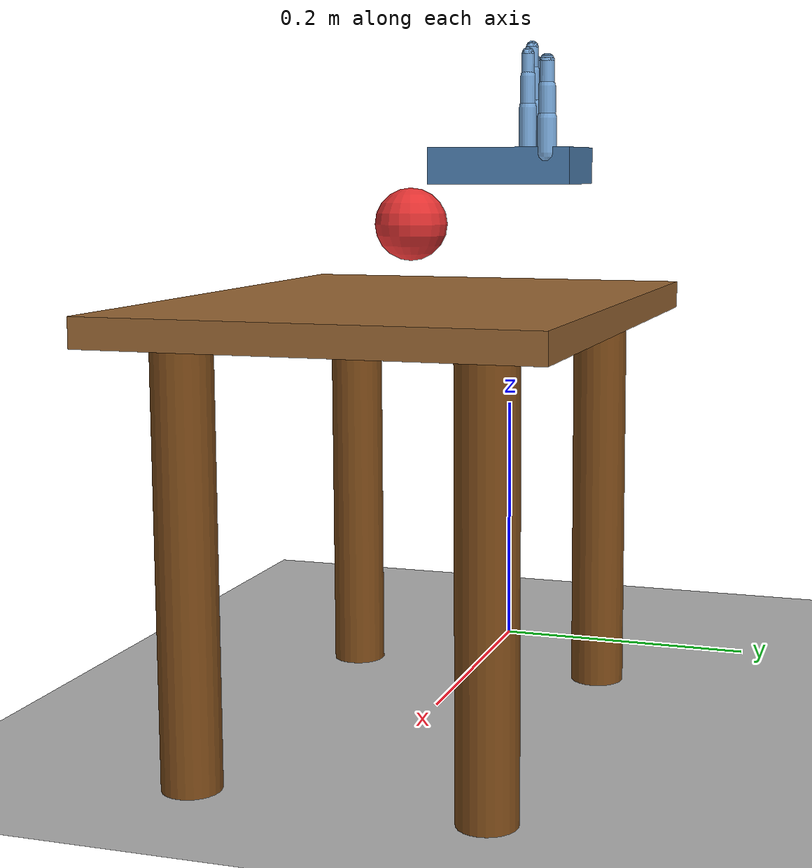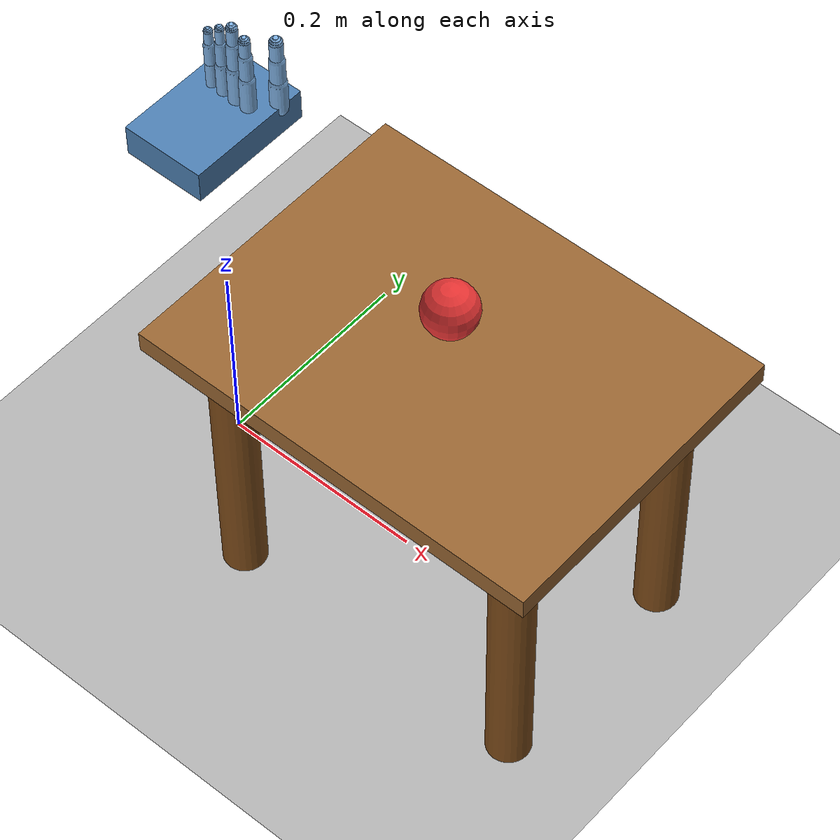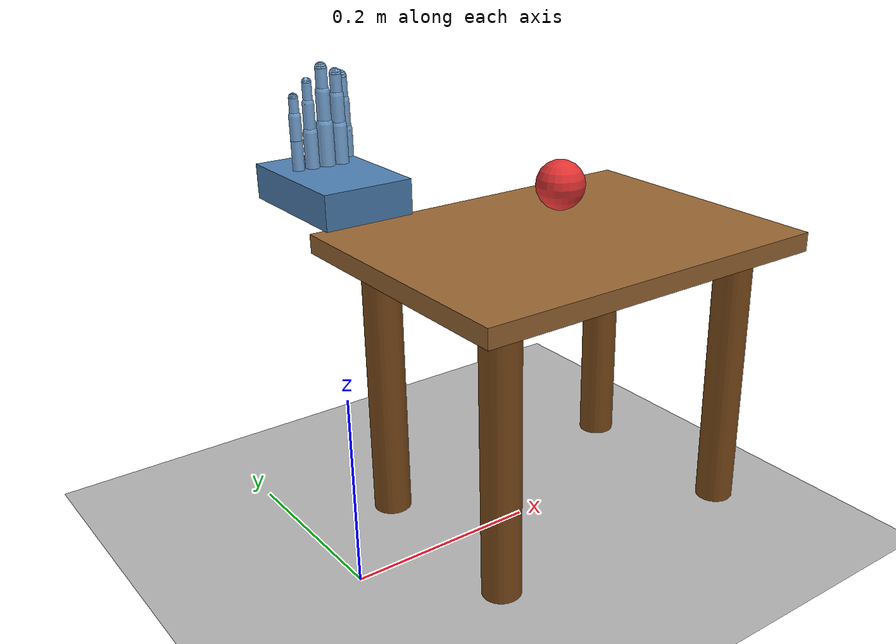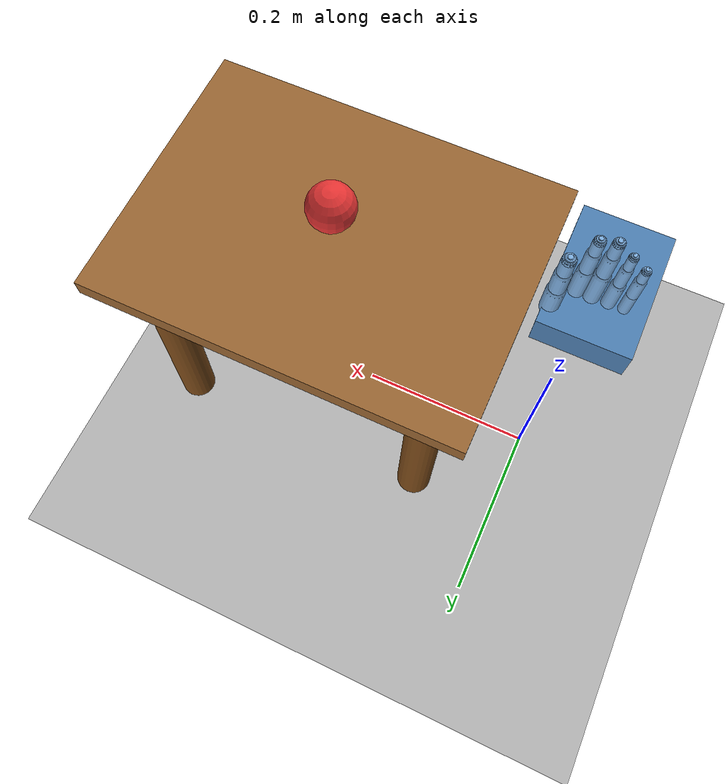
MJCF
<!--
  @file    leap_hand_description.xml
  @brief   简化的灵巧手MuJoCo XML模型
  @details 5根手指，每根3个关节（MCP, PIP, DIP），含桌面场景和可抓取球体。
           这是简化模型，用于验证运动学，不是完整的LEAP Hand。
-->

<mujoco model="leap_hand_simple">
  <compiler angle="degree" autolimits="true"/>

  <option timestep="0.002" gravity="0 0 -9.81"/>

  <default>
    <joint armature="0.01" damping="0.1"/>
    <geom condim="4" friction="1.0 0.005 0.0001"/>
    <position kp="50" kv="5"/>
  </default>

  <asset>
    <texture name="grid" type="2d" builtin="checker" rgb1="0.8 0.8 0.8" rgb2="0.6 0.6 0.6" width="512" height="512"/>
    <material name="grid_mat" texture="grid" texrepeat="4 4" reflectance="0.1"/>
    <material name="hand_mat" rgba="0.4 0.6 0.8 1.0"/>
    <material name="palm_mat" rgba="0.3 0.5 0.7 1.0"/>
    <material name="finger_mat" rgba="0.5 0.7 0.9 1.0"/>
    <material name="ball_mat" rgba="0.9 0.2 0.2 1.0"/>
    <material name="cylinder_mat" rgba="0.2 0.8 0.2 1.0"/>
    <material name="box_mat" rgba="0.2 0.2 0.9 1.0"/>
  </asset>

  <worldbody>
    <!-- 地面 -->
    <geom name="floor" type="plane" size="0.5 0.5 0.01" material="grid_mat"/>
    <light directional="true" diffuse="0.8 0.8 0.8" specular="0.3 0.3 0.3" pos="0 0 4" dir="0 0 -1"/>

    <!-- 桌面 -->
    <body name="table" pos="0.25 0 0.3">
      <geom name="table_top" type="box" size="0.2 0.15 0.01" rgba="0.6 0.4 0.2 1.0" mass="5"/>
      <geom name="table_leg1" type="cylinder" size="0.02 0.15" pos=" 0.15  0.1 -0.16" rgba="0.5 0.3 0.1 1.0"/>
      <geom name="table_leg2" type="cylinder" size="0.02 0.15" pos="-0.15  0.1 -0.16" rgba="0.5 0.3 0.1 1.0"/>
      <geom name="table_leg3" type="cylinder" size="0.02 0.15" pos=" 0.15 -0.1 -0.16" rgba="0.5 0.3 0.1 1.0"/>
      <geom name="table_leg4" type="cylinder" size="0.02 0.15" pos="-0.15 -0.1 -0.16" rgba="0.5 0.3 0.1 1.0"/>
    </body>

    <!-- 可抓取球体 -->
    <body name="ball" pos="0.25 0 0.36">
      <freejoint name="ball_joint"/>
      <geom name="ball_geom" type="sphere" size="0.025" material="ball_mat" mass="0.05"/>
    </body>

    <!-- 灵巧手基座（手掌） -->
    <body name="palm" pos="0 0 0.4">
      <geom name="palm_geom" type="box" size="0.04 0.06 0.015" material="palm_mat" mass="0.2"/>

      <!-- ============ 拇指 ============ -->
      <body name="thumb_base" pos="0.035 0.04 0.01">
        <joint name="thumb_mcp_x" type="hinge" axis="1 0 0" range="-20 60"/>
        <geom name="thumb_mcp_geom" type="capsule" fromto="0 0 0 0 0 0.028" size="0.008" material="finger_mat"/>

        <body name="thumb_mcp" pos="0 0 0.028">
          <joint name="thumb_mcp_y" type="hinge" axis="0 1 0" range="-10 70"/>
          <geom name="thumb_pip_geom" type="capsule" fromto="0 0 0 0 0 0.025" size="0.007" material="finger_mat"/>

          <body name="thumb_pip" pos="0 0 0.025">
            <joint name="thumb_pip" type="hinge" axis="0 1 0" range="0 80"/>
            <geom name="thumb_dip_geom" type="capsule" fromto="0 0 0 0 0 0.02" size="0.006" material="finger_mat"/>

            <body name="thumb_tip" pos="0 0 0.02">
              <geom name="thumb_tip_geom" type="sphere" size="0.006" material="finger_mat" contype="1" conaffinity="1"/>
              <site name="thumb_tip_site" pos="0 0 0" size="0.003"/>
            </body>
          </body>
        </body>
      </body>

      <!-- ============ 食指 ============ -->
      <body name="index_base" pos="0.02 0.02 0.015">
        <joint name="index_mcp" type="hinge" axis="1 0 0" range="-10 90"/>
        <geom name="index_mcp_geom" type="capsule" fromto="0 0 0 0 0 0.032" size="0.007" material="finger_mat"/>

        <body name="index_mcp" pos="0 0 0.032">
          <joint name="index_pip" type="hinge" axis="1 0 0" range="0 100"/>
          <geom name="index_pip_geom" type="capsule" fromto="0 0 0 0 0 0.025" size="0.006" material="finger_mat"/>

          <body name="index_pip" pos="0 0 0.025">
            <joint name="index_dip" type="hinge" axis="1 0 0" range="0 80"/>
            <geom name="index_dip_geom" type="capsule" fromto="0 0 0 0 0 0.018" size="0.005" material="finger_mat"/>

            <body name="index_tip" pos="0 0 0.018">
              <geom name="index_tip_geom" type="sphere" size="0.005" material="finger_mat" contype="1" conaffinity="1"/>
              <site name="index_tip_site" pos="0 0 0" size="0.003"/>
            </body>
          </body>
        </body>
      </body>

      <!-- ============ 中指 ============ -->
      <body name="middle_base" pos="0.007 0.02 0.015">
        <joint name="middle_mcp" type="hinge" axis="1 0 0" range="-10 90"/>
        <geom name="middle_mcp_geom" type="capsule" fromto="0 0 0 0 0 0.035" size="0.007" material="finger_mat"/>

        <body name="middle_mcp" pos="0 0 0.035">
          <joint name="middle_pip" type="hinge" axis="1 0 0" range="0 100"/>
          <geom name="middle_pip_geom" type="capsule" fromto="0 0 0 0 0 0.027" size="0.006" material="finger_mat"/>

          <body name="middle_pip" pos="0 0 0.027">
            <joint name="middle_dip" type="hinge" axis="1 0 0" range="0 80"/>
            <geom name="middle_dip_geom" type="capsule" fromto="0 0 0 0 0 0.019" size="0.005" material="finger_mat"/>

            <body name="middle_tip" pos="0 0 0.019">
              <geom name="middle_tip_geom" type="sphere" size="0.005" material="finger_mat" contype="1" conaffinity="1"/>
              <site name="middle_tip_site" pos="0 0 0" size="0.003"/>
            </body>
          </body>
        </body>
      </body>

      <!-- ============ 无名指 ============ -->
      <body name="ring_base" pos="-0.007 0.02 0.015">
        <joint name="ring_mcp" type="hinge" axis="1 0 0" range="-10 90"/>
        <geom name="ring_mcp_geom" type="capsule" fromto="0 0 0 0 0 0.030" size="0.006" material="finger_mat"/>

        <body name="ring_mcp" pos="0 0 0.030">
          <joint name="ring_pip" type="hinge" axis="1 0 0" range="0 100"/>
          <geom name="ring_pip_geom" type="capsule" fromto="0 0 0 0 0 0.024" size="0.005" material="finger_mat"/>

          <body name="ring_pip" pos="0 0 0.024">
            <joint name="ring_dip" type="hinge" axis="1 0 0" range="0 80"/>
            <geom name="ring_dip_geom" type="capsule" fromto="0 0 0 0 0 0.017" size="0.004" material="finger_mat"/>

            <body name="ring_tip" pos="0 0 0.017">
              <geom name="ring_tip_geom" type="sphere" size="0.004" material="finger_mat" contype="1" conaffinity="1"/>
              <site name="ring_tip_site" pos="0 0 0" size="0.003"/>
            </body>
          </body>
        </body>
      </body>

      <!-- ============ 小指 ============ -->
      <body name="pinky_base" pos="-0.02 0.02 0.015">
        <joint name="pinky_mcp" type="hinge" axis="1 0 0" range="-10 90"/>
        <geom name="pinky_mcp_geom" type="capsule" fromto="0 0 0 0 0 0.025" size="0.005" material="finger_mat"/>

        <body name="pinky_mcp" pos="0 0 0.025">
          <joint name="pinky_pip" type="hinge" axis="1 0 0" range="0 100"/>
          <geom name="pinky_pip_geom" type="capsule" fromto="0 0 0 0 0 0.020" size="0.005" material="finger_mat"/>

          <body name="pinky_pip" pos="0 0 0.020">
            <joint name="pinky_dip" type="hinge" axis="1 0 0" range="0 80"/>
            <geom name="pinky_dip_geom" type="capsule" fromto="0 0 0 0 0 0.015" size="0.004" material="finger_mat"/>

            <body name="pinky_tip" pos="0 0 0.015">
              <geom name="pinky_tip_geom" type="sphere" size="0.004" material="finger_mat" contype="1" conaffinity="1"/>
              <site name="pinky_tip_site" pos="0 0 0" size="0.003"/>
            </body>
          </body>
        </body>
      </body>
    </body>
  </worldbody>

  <!-- 执行器 -->
  <actuator>
    <position name="thumb_mcp_x_ctrl" joint="thumb_mcp_x" kp="50"/>
    <position name="thumb_mcp_y_ctrl" joint="thumb_mcp_y" kp="50"/>
    <position name="thumb_pip_ctrl" joint="thumb_pip" kp="50"/>

    <position name="index_mcp_ctrl" joint="index_mcp" kp="50"/>
    <position name="index_pip_ctrl" joint="index_pip" kp="50"/>
    <position name="index_dip_ctrl" joint="index_dip" kp="50"/>

    <position name="middle_mcp_ctrl" joint="middle_mcp" kp="50"/>
    <position name="middle_pip_ctrl" joint="middle_pip" kp="50"/>
    <position name="middle_dip_ctrl" joint="middle_dip" kp="50"/>

    <position name="ring_mcp_ctrl" joint="ring_mcp" kp="50"/>
    <position name="ring_pip_ctrl" joint="ring_pip" kp="50"/>
    <position name="ring_dip_ctrl" joint="ring_dip" kp="50"/>

    <position name="pinky_mcp_ctrl" joint="pinky_mcp" kp="50"/>
    <position name="pinky_pip_ctrl" joint="pinky_pip" kp="50"/>
    <position name="pinky_dip_ctrl" joint="pinky_dip" kp="50"/>
  </actuator>

  <!-- 传感器 -->
  <sensor>
    <framepos name="thumb_tip_pos" objtype="site" objname="thumb_tip_site"/>
    <framepos name="index_tip_pos" objtype="site" objname="index_tip_site"/>
    <framepos name="middle_tip_pos" objtype="site" objname="middle_tip_site"/>
    <framepos name="ring_tip_pos" objtype="site" objname="ring_tip_site"/>
    <framepos name="pinky_tip_pos" objtype="site" objname="pinky_tip_site"/>
  </sensor>
</mujoco>
